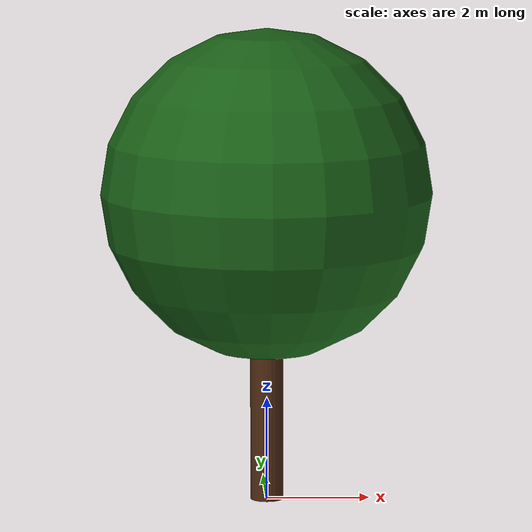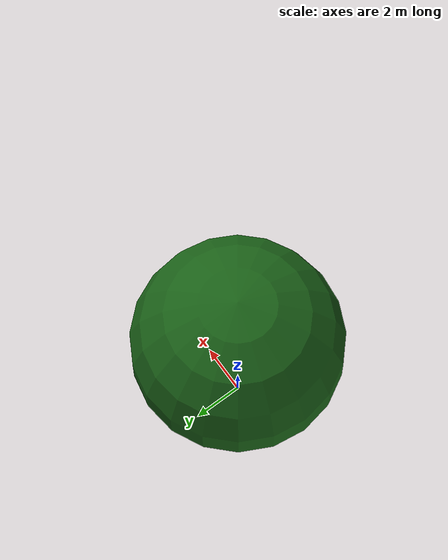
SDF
<?xml version="1.0"?>
<sdf version="1.9">
  <model name="surf_deciduous_tree">
    <static>true</static>
    <link name="tree">
      <collision name="trunk_collision">
        <pose>0 0 2.4 0 0 0</pose>
        <geometry><cylinder><radius>0.32</radius><length>4.8</length></cylinder></geometry>
      </collision>
      <visual name="trunk_visual">
        <pose>0 0 2.4 0 0 0</pose>
        <geometry><cylinder><radius>0.32</radius><length>4.8</length></cylinder></geometry>
        <material><ambient>0.24 0.12 0.05 1</ambient><diffuse>0.30 0.16 0.07 1</diffuse></material>
      </visual>
      <collision name="canopy_collision">
        <pose>0 0 6.0 0 0 0</pose>
        <geometry><sphere><radius>3.2</radius></sphere></geometry>
      </collision>
      <visual name="canopy_visual">
        <pose>0 0 6.0 0 0 0</pose>
        <geometry><sphere><radius>3.2</radius></sphere></geometry>
        <material><ambient>0.08 0.30 0.07 1</ambient><diffuse>0.10 0.38 0.09 1</diffuse></material>
      </visual>
    </link>
  </model>
</sdf>
